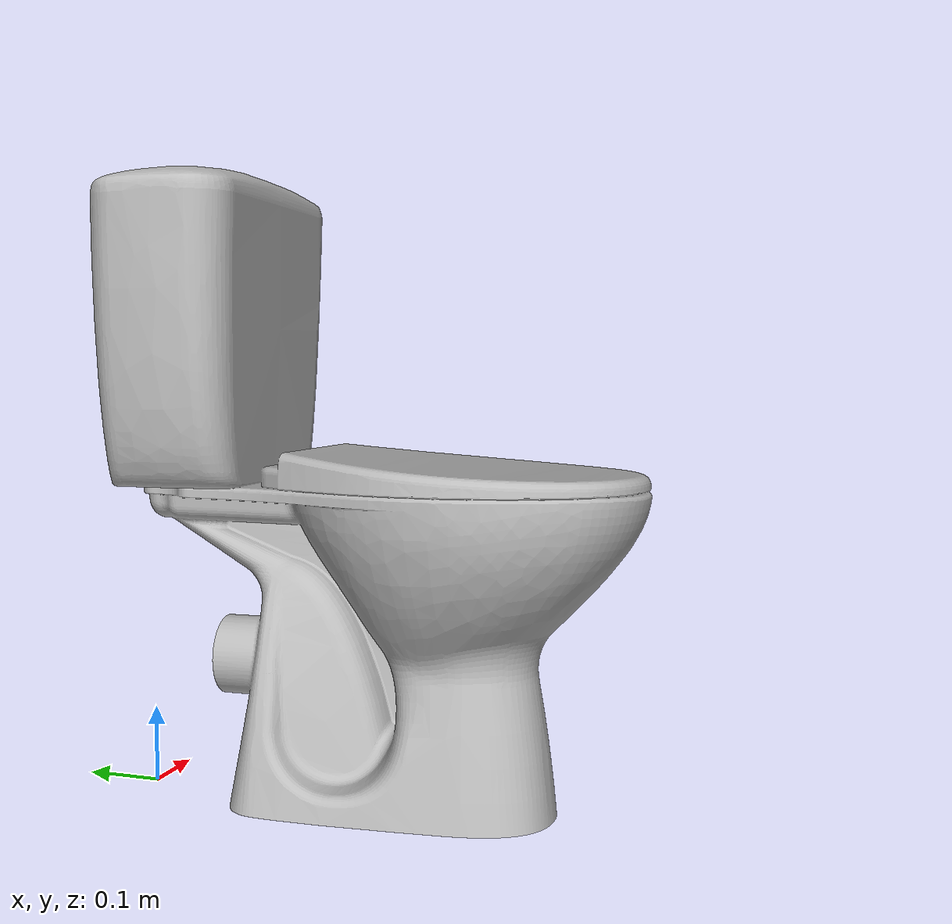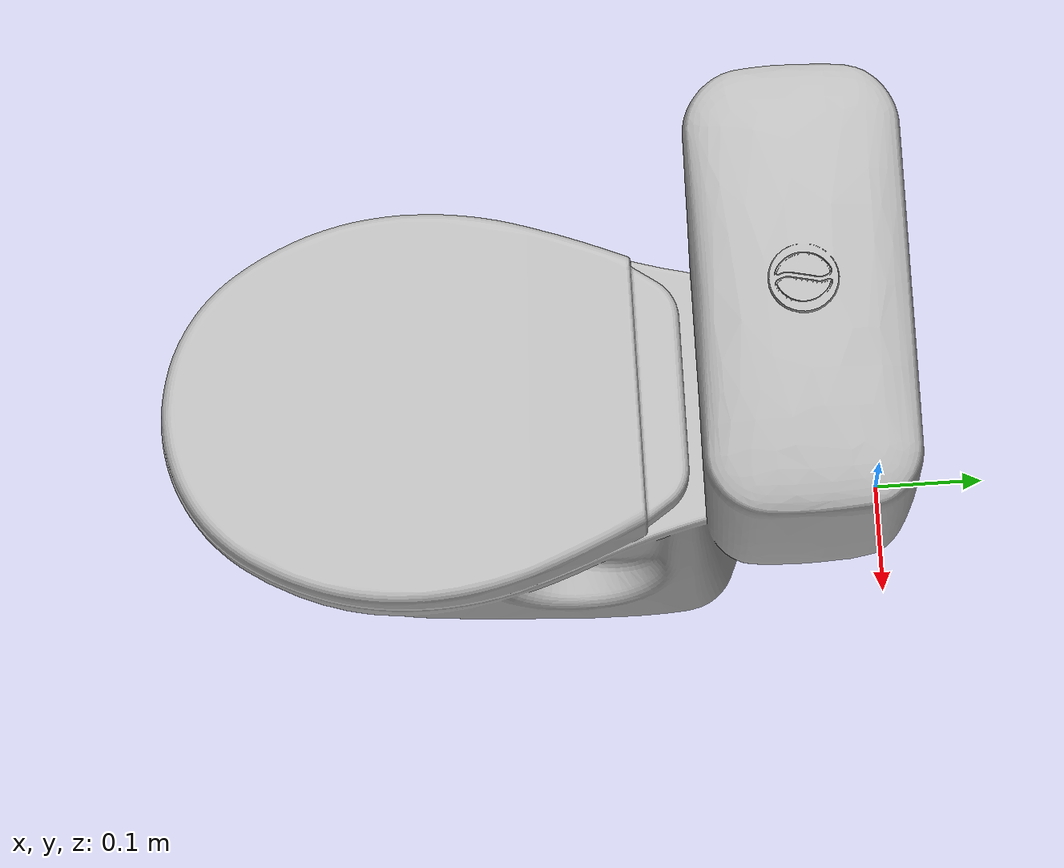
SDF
<?xml version="1.0" ?>
<sdf version="1.4">
  <model name="Toilet">
    <pose>0 0 0  0 0 0</pose>
     <static>true</static>
    <link name="link">
      <collision name="collision">
        <geometry>
          <mesh>
            <uri>model://Toilet/meshes/Toilet.stl</uri>
            <scale>0.01 0.01 0.01</scale>
          </mesh>
        </geometry>
      </collision>
      <visual name="visual">
        <geometry>
          <mesh>
            <uri>model://Toilet/meshes/Toilet.stl</uri>
            <scale>0.01 0.01 0.01</scale>
          </mesh>
        </geometry>
      </visual>
    </link>
  </model>
 </sdf>
